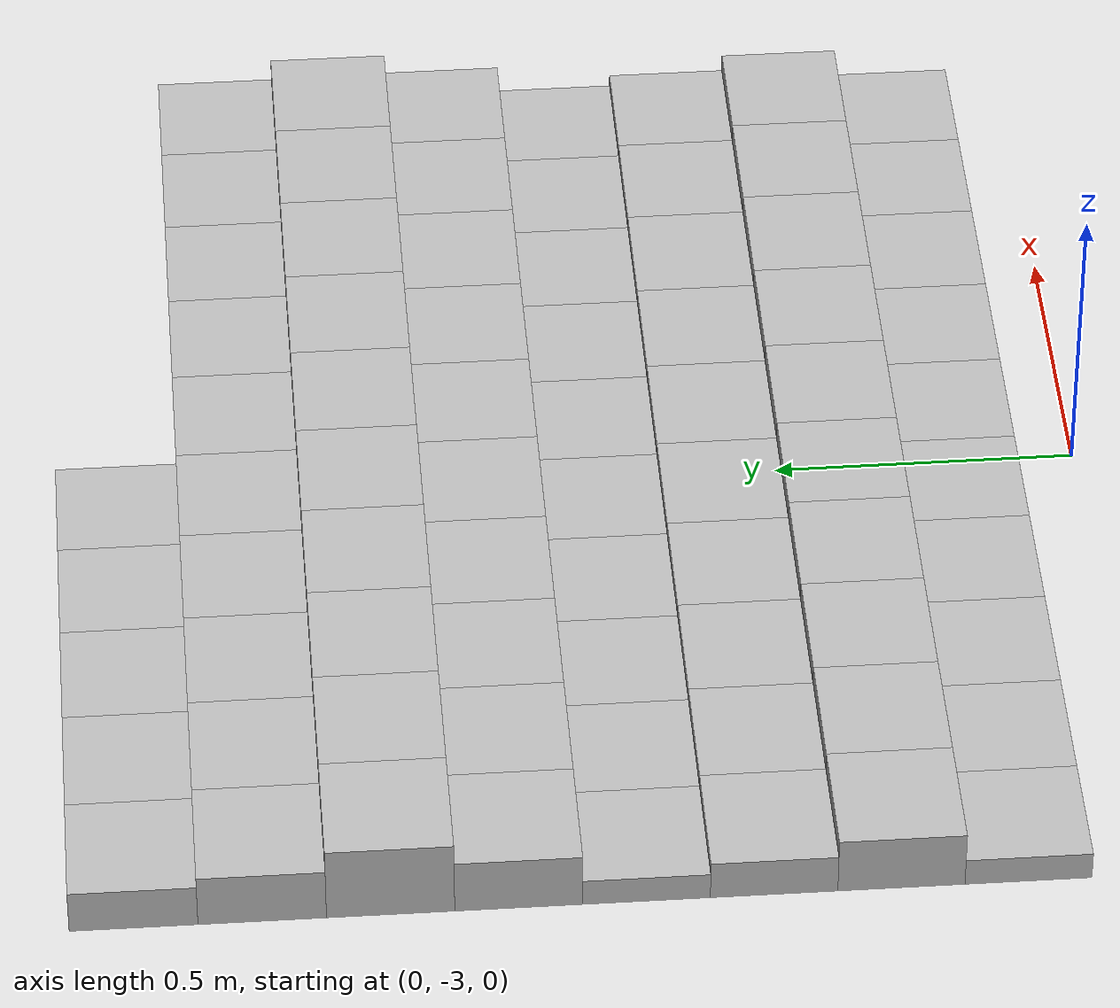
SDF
<sdf version="1.6">
 <model name="Terrain">
  <static>true</static>
  <link name="box_7_0">
   <pose>-0.9 -1.4 0.0399035328796 0 0 0</pose>
   <inertial>
    <mass>1.0</mass>
    <inertia><ixx>0.0</ixx><ixy>0.0</ixy><ixz>0.0</ixz><iyy>0.0</iyy><iyz>0.0</iyz><izz>0.0</izz></inertia>
   </inertial>
   <collision name="collision"><geometry><box><size>0.2 0.2 0.0798070657593</size></box></geometry></collision>
   <visual name="visual"><geometry><box><size>0.2 0.2 0.0798070657593</size></box></geometry></visual>
  </link>
  <link name="box_7_1">
   <pose>-0.7 -1.4 0.0399035328796 0 0 0</pose>
   <inertial>
    <mass>1.0</mass>
    <inertia><ixx>0.0</ixx><ixy>0.0</ixy><ixz>0.0</ixz><iyy>0.0</iyy><iyz>0.0</iyz><izz>0.0</izz></inertia>
   </inertial>
   <collision name="collision"><geometry><box><size>0.2 0.2 0.0798070657593</size></box></geometry></collision>
   <visual name="visual"><geometry><box><size>0.2 0.2 0.0798070657593</size></box></geometry></visual>
  </link>
  <link name="box_7_2">
   <pose>-0.5 -1.4 0.0399035328796 0 0 0</pose>
   <inertial>
    <mass>1.0</mass>
    <inertia><ixx>0.0</ixx><ixy>0.0</ixy><ixz>0.0</ixz><iyy>0.0</iyy><iyz>0.0</iyz><izz>0.0</izz></inertia>
   </inertial>
   <collision name="collision"><geometry><box><size>0.2 0.2 0.0798070657593</size></box></geometry></collision>
   <visual name="visual"><geometry><box><size>0.2 0.2 0.0798070657593</size></box></geometry></visual>
  </link>
  <link name="box_7_3">
   <pose>-0.3 -1.4 0.0399035328796 0 0 0</pose>
   <inertial>
    <mass>1.0</mass>
    <inertia><ixx>0.0</ixx><ixy>0.0</ixy><ixz>0.0</ixz><iyy>0.0</iyy><iyz>0.0</iyz><izz>0.0</izz></inertia>
   </inertial>
   <collision name="collision"><geometry><box><size>0.2 0.2 0.0798070657593</size></box></geometry></collision>
   <visual name="visual"><geometry><box><size>0.2 0.2 0.0798070657593</size></box></geometry></visual>
  </link>
  <link name="box_7_4">
   <pose>-0.1 -1.4 0.0399035328796 0 0 0</pose>
   <inertial>
    <mass>1.0</mass>
    <inertia><ixx>0.0</ixx><ixy>0.0</ixy><ixz>0.0</ixz><iyy>0.0</iyy><iyz>0.0</iyz><izz>0.0</izz></inertia>
   </inertial>
   <collision name="collision"><geometry><box><size>0.2 0.2 0.0798070657593</size></box></geometry></collision>
   <visual name="visual"><geometry><box><size>0.2 0.2 0.0798070657593</size></box></geometry></visual>
  </link>
  <link name="box_8_0">
   <pose>-0.9 -1.6 0.0491825249713 0 0 0</pose>
   <inertial>
    <mass>1.0</mass>
    <inertia><ixx>0.0</ixx><ixy>0.0</ixy><ixz>0.0</ixz><iyy>0.0</iyy><iyz>0.0</iyz><izz>0.0</izz></inertia>
   </inertial>
   <collision name="collision"><geometry><box><size>0.2 0.2 0.0983650499427</size></box></geometry></collision>
   <visual name="visual"><geometry><box><size>0.2 0.2 0.0983650499427</size></box></geometry></visual>
  </link>
  <link name="box_8_1">
   <pose>-0.7 -1.6 0.0491825249713 0 0 0</pose>
   <inertial>
    <mass>1.0</mass>
    <inertia><ixx>0.0</ixx><ixy>0.0</ixy><ixz>0.0</ixz><iyy>0.0</iyy><iyz>0.0</iyz><izz>0.0</izz></inertia>
   </inertial>
   <collision name="collision"><geometry><box><size>0.2 0.2 0.0983650499427</size></box></geometry></collision>
   <visual name="visual"><geometry><box><size>0.2 0.2 0.0983650499427</size></box></geometry></visual>
  </link>
  <link name="box_8_2">
   <pose>-0.5 -1.6 0.0491825249713 0 0 0</pose>
   <inertial>
    <mass>1.0</mass>
    <inertia><ixx>0.0</ixx><ixy>0.0</ixy><ixz>0.0</ixz><iyy>0.0</iyy><iyz>0.0</iyz><izz>0.0</izz></inertia>
   </inertial>
   <collision name="collision"><geometry><box><size>0.2 0.2 0.0983650499427</size></box></geometry></collision>
   <visual name="visual"><geometry><box><size>0.2 0.2 0.0983650499427</size></box></geometry></visual>
  </link>
  <link name="box_8_3">
   <pose>-0.3 -1.6 0.0491825249713 0 0 0</pose>
   <inertial>
    <mass>1.0</mass>
    <inertia><ixx>0.0</ixx><ixy>0.0</ixy><ixz>0.0</ixz><iyy>0.0</iyy><iyz>0.0</iyz><izz>0.0</izz></inertia>
   </inertial>
   <collision name="collision"><geometry><box><size>0.2 0.2 0.0983650499427</size></box></geometry></collision>
   <visual name="visual"><geometry><box><size>0.2 0.2 0.0983650499427</size></box></geometry></visual>
  </link>
  <link name="box_8_4">
   <pose>-0.1 -1.6 0.0491825249713 0 0 0</pose>
   <inertial>
    <mass>1.0</mass>
    <inertia><ixx>0.0</ixx><ixy>0.0</ixy><ixz>0.0</ixz><iyy>0.0</iyy><iyz>0.0</iyz><izz>0.0</izz></inertia>
   </inertial>
   <collision name="collision"><geometry><box><size>0.2 0.2 0.0983650499427</size></box></geometry></collision>
   <visual name="visual"><geometry><box><size>0.2 0.2 0.0983650499427</size></box></geometry></visual>
  </link>
  <link name="box_8_5">
   <pose>0.1 -1.6 0.0491825249713 0 0 0</pose>
   <inertial>
    <mass>1.0</mass>
    <inertia><ixx>0.0</ixx><ixy>0.0</ixy><ixz>0.0</ixz><iyy>0.0</iyy><iyz>0.0</iyz><izz>0.0</izz></inertia>
   </inertial>
   <collision name="collision"><geometry><box><size>0.2 0.2 0.0983650499427</size></box></geometry></collision>
   <visual name="visual"><geometry><box><size>0.2 0.2 0.0983650499427</size></box></geometry></visual>
  </link>
  <link name="box_8_6">
   <pose>0.3 -1.6 0.0491825249713 0 0 0</pose>
   <inertial>
    <mass>1.0</mass>
    <inertia><ixx>0.0</ixx><ixy>0.0</ixy><ixz>0.0</ixz><iyy>0.0</iyy><iyz>0.0</iyz><izz>0.0</izz></inertia>
   </inertial>
   <collision name="collision"><geometry><box><size>0.2 0.2 0.0983650499427</size></box></geometry></collision>
   <visual name="visual"><geometry><box><size>0.2 0.2 0.0983650499427</size></box></geometry></visual>
  </link>
  <link name="box_8_7">
   <pose>0.5 -1.6 0.0491825249713 0 0 0</pose>
   <inertial>
    <mass>1.0</mass>
    <inertia><ixx>0.0</ixx><ixy>0.0</ixy><ixz>0.0</ixz><iyy>0.0</iyy><iyz>0.0</iyz><izz>0.0</izz></inertia>
   </inertial>
   <collision name="collision"><geometry><box><size>0.2 0.2 0.0983650499427</size></box></geometry></collision>
   <visual name="visual"><geometry><box><size>0.2 0.2 0.0983650499427</size></box></geometry></visual>
  </link>
  <link name="box_8_8">
   <pose>0.7 -1.6 0.0491825249713 0 0 0</pose>
   <inertial>
    <mass>1.0</mass>
    <inertia><ixx>0.0</ixx><ixy>0.0</ixy><ixz>0.0</ixz><iyy>0.0</iyy><iyz>0.0</iyz><izz>0.0</izz></inertia>
   </inertial>
   <collision name="collision"><geometry><box><size>0.2 0.2 0.0983650499427</size></box></geometry></collision>
   <visual name="visual"><geometry><box><size>0.2 0.2 0.0983650499427</size></box></geometry></visual>
  </link>
  <link name="box_8_9">
   <pose>0.9 -1.6 0.0491825249713 0 0 0</pose>
   <inertial>
    <mass>1.0</mass>
    <inertia><ixx>0.0</ixx><ixy>0.0</ixy><ixz>0.0</ixz><iyy>0.0</iyy><iyz>0.0</iyz><izz>0.0</izz></inertia>
   </inertial>
   <collision name="collision"><geometry><box><size>0.2 0.2 0.0983650499427</size></box></geometry></collision>
   <visual name="visual"><geometry><box><size>0.2 0.2 0.0983650499427</size></box></geometry></visual>
  </link>
  <link name="box_9_0">
   <pose>-0.9 -1.8 0.0700837265305 0 0 0</pose>
   <inertial>
    <mass>1.0</mass>
    <inertia><ixx>0.0</ixx><ixy>0.0</ixy><ixz>0.0</ixz><iyy>0.0</iyy><iyz>0.0</iyz><izz>0.0</izz></inertia>
   </inertial>
   <collision name="collision"><geometry><box><size>0.2 0.2 0.140167453061</size></box></geometry></collision>
   <visual name="visual"><geometry><box><size>0.2 0.2 0.140167453061</size></box></geometry></visual>
  </link>
  <link name="box_9_1">
   <pose>-0.7 -1.8 0.0700837265305 0 0 0</pose>
   <inertial>
    <mass>1.0</mass>
    <inertia><ixx>0.0</ixx><ixy>0.0</ixy><ixz>0.0</ixz><iyy>0.0</iyy><iyz>0.0</iyz><izz>0.0</izz></inertia>
   </inertial>
   <collision name="collision"><geometry><box><size>0.2 0.2 0.140167453061</size></box></geometry></collision>
   <visual name="visual"><geometry><box><size>0.2 0.2 0.140167453061</size></box></geometry></visual>
  </link>
  <link name="box_9_2">
   <pose>-0.5 -1.8 0.0700837265305 0 0 0</pose>
   <inertial>
    <mass>1.0</mass>
    <inertia><ixx>0.0</ixx><ixy>0.0</ixy><ixz>0.0</ixz><iyy>0.0</iyy><iyz>0.0</iyz><izz>0.0</izz></inertia>
   </inertial>
   <collision name="collision"><geometry><box><size>0.2 0.2 0.140167453061</size></box></geometry></collision>
   <visual name="visual"><geometry><box><size>0.2 0.2 0.140167453061</size></box></geometry></visual>
  </link>
  <link name="box_9_3">
   <pose>-0.3 -1.8 0.0700837265305 0 0 0</pose>
   <inertial>
    <mass>1.0</mass>
    <inertia><ixx>0.0</ixx><ixy>0.0</ixy><ixz>0.0</ixz><iyy>0.0</iyy><iyz>0.0</iyz><izz>0.0</izz></inertia>
   </inertial>
   <collision name="collision"><geometry><box><size>0.2 0.2 0.140167453061</size></box></geometry></collision>
   <visual name="visual"><geometry><box><size>0.2 0.2 0.140167453061</size></box></geometry></visual>
  </link>
  <link name="box_9_4">
   <pose>-0.1 -1.8 0.0700837265305 0 0 0</pose>
   <inertial>
    <mass>1.0</mass>
    <inertia><ixx>0.0</ixx><ixy>0.0</ixy><ixz>0.0</ixz><iyy>0.0</iyy><iyz>0.0</iyz><izz>0.0</izz></inertia>
   </inertial>
   <collision name="collision"><geometry><box><size>0.2 0.2 0.140167453061</size></box></geometry></collision>
   <visual name="visual"><geometry><box><size>0.2 0.2 0.140167453061</size></box></geometry></visual>
  </link>
  <link name="box_9_5">
   <pose>0.1 -1.8 0.0700837265305 0 0 0</pose>
   <inertial>
    <mass>1.0</mass>
    <inertia><ixx>0.0</ixx><ixy>0.0</ixy><ixz>0.0</ixz><iyy>0.0</iyy><iyz>0.0</iyz><izz>0.0</izz></inertia>
   </inertial>
   <collision name="collision"><geometry><box><size>0.2 0.2 0.140167453061</size></box></geometry></collision>
   <visual name="visual"><geometry><box><size>0.2 0.2 0.140167453061</size></box></geometry></visual>
  </link>
  <link name="box_9_6">
   <pose>0.3 -1.8 0.0700837265305 0 0 0</pose>
   <inertial>
    <mass>1.0</mass>
    <inertia><ixx>0.0</ixx><ixy>0.0</ixy><ixz>0.0</ixz><iyy>0.0</iyy><iyz>0.0</iyz><izz>0.0</izz></inertia>
   </inertial>
   <collision name="collision"><geometry><box><size>0.2 0.2 0.140167453061</size></box></geometry></collision>
   <visual name="visual"><geometry><box><size>0.2 0.2 0.140167453061</size></box></geometry></visual>
  </link>
  <link name="box_9_7">
   <pose>0.5 -1.8 0.0700837265305 0 0 0</pose>
   <inertial>
    <mass>1.0</mass>
    <inertia><ixx>0.0</ixx><ixy>0.0</ixy><ixz>0.0</ixz><iyy>0.0</iyy><iyz>0.0</iyz><izz>0.0</izz></inertia>
   </inertial>
   <collision name="collision"><geometry><box><size>0.2 0.2 0.140167453061</size></box></geometry></collision>
   <visual name="visual"><geometry><box><size>0.2 0.2 0.140167453061</size></box></geometry></visual>
  </link>
  <link name="box_9_8">
   <pose>0.7 -1.8 0.0700837265305 0 0 0</pose>
   <inertial>
    <mass>1.0</mass>
    <inertia><ixx>0.0</ixx><ixy>0.0</ixy><ixz>0.0</ixz><iyy>0.0</iyy><iyz>0.0</iyz><izz>0.0</izz></inertia>
   </inertial>
   <collision name="collision"><geometry><box><size>0.2 0.2 0.140167453061</size></box></geometry></collision>
   <visual name="visual"><geometry><box><size>0.2 0.2 0.140167453061</size></box></geometry></visual>
  </link>
  <link name="box_9_9">
   <pose>0.9 -1.8 0.0700837265305 0 0 0</pose>
   <inertial>
    <mass>1.0</mass>
    <inertia><ixx>0.0</ixx><ixy>0.0</ixy><ixz>0.0</ixz><iyy>0.0</iyy><iyz>0.0</iyz><izz>0.0</izz></inertia>
   </inertial>
   <collision name="collision"><geometry><box><size>0.2 0.2 0.140167453061</size></box></geometry></collision>
   <visual name="visual"><geometry><box><size>0.2 0.2 0.140167453061</size></box></geometry></visual>
  </link>
  <link name="box_10_0">
   <pose>-0.9 -2.0 0.0508107883354 0 0 0</pose>
   <inertial>
    <mass>1.0</mass>
    <inertia><ixx>0.0</ixx><ixy>0.0</ixy><ixz>0.0</ixz><iyy>0.0</iyy><iyz>0.0</iyz><izz>0.0</izz></inertia>
   </inertial>
   <collision name="collision"><geometry><box><size>0.2 0.2 0.101621576671</size></box></geometry></collision>
   <visual name="visual"><geometry><box><size>0.2 0.2 0.101621576671</size></box></geometry></visual>
  </link>
  <link name="box_10_1">
   <pose>-0.7 -2.0 0.0508107883354 0 0 0</pose>
   <inertial>
    <mass>1.0</mass>
    <inertia><ixx>0.0</ixx><ixy>0.0</ixy><ixz>0.0</ixz><iyy>0.0</iyy><iyz>0.0</iyz><izz>0.0</izz></inertia>
   </inertial>
   <collision name="collision"><geometry><box><size>0.2 0.2 0.101621576671</size></box></geometry></collision>
   <visual name="visual"><geometry><box><size>0.2 0.2 0.101621576671</size></box></geometry></visual>
  </link>
  <link name="box_10_2">
   <pose>-0.5 -2.0 0.0508107883354 0 0 0</pose>
   <inertial>
    <mass>1.0</mass>
    <inertia><ixx>0.0</ixx><ixy>0.0</ixy><ixz>0.0</ixz><iyy>0.0</iyy><iyz>0.0</iyz><izz>0.0</izz></inertia>
   </inertial>
   <collision name="collision"><geometry><box><size>0.2 0.2 0.101621576671</size></box></geometry></collision>
   <visual name="visual"><geometry><box><size>0.2 0.2 0.101621576671</size></box></geometry></visual>
  </link>
  <link name="box_10_3">
   <pose>-0.3 -2.0 0.0508107883354 0 0 0</pose>
   <inertial>
    <mass>1.0</mass>
    <inertia><ixx>0.0</ixx><ixy>0.0</ixy><ixz>0.0</ixz><iyy>0.0</iyy><iyz>0.0</iyz><izz>0.0</izz></inertia>
   </inertial>
   <collision name="collision"><geometry><box><size>0.2 0.2 0.101621576671</size></box></geometry></collision>
   <visual name="visual"><geometry><box><size>0.2 0.2 0.101621576671</size></box></geometry></visual>
  </link>
  <link name="box_10_4">
   <pose>-0.1 -2.0 0.0508107883354 0 0 0</pose>
   <inertial>
    <mass>1.0</mass>
    <inertia><ixx>0.0</ixx><ixy>0.0</ixy><ixz>0.0</ixz><iyy>0.0</iyy><iyz>0.0</iyz><izz>0.0</izz></inertia>
   </inertial>
   <collision name="collision"><geometry><box><size>0.2 0.2 0.101621576671</size></box></geometry></collision>
   <visual name="visual"><geometry><box><size>0.2 0.2 0.101621576671</size></box></geometry></visual>
  </link>
  <link name="box_10_5">
   <pose>0.1 -2.0 0.0508107883354 0 0 0</pose>
   <inertial>
    <mass>1.0</mass>
    <inertia><ixx>0.0</ixx><ixy>0.0</ixy><ixz>0.0</ixz><iyy>0.0</iyy><iyz>0.0</iyz><izz>0.0</izz></inertia>
   </inertial>
   <collision name="collision"><geometry><box><size>0.2 0.2 0.101621576671</size></box></geometry></collision>
   <visual name="visual"><geometry><box><size>0.2 0.2 0.101621576671</size></box></geometry></visual>
  </link>
  <link name="box_10_6">
   <pose>0.3 -2.0 0.0508107883354 0 0 0</pose>
   <inertial>
    <mass>1.0</mass>
    <inertia><ixx>0.0</ixx><ixy>0.0</ixy><ixz>0.0</ixz><iyy>0.0</iyy><iyz>0.0</iyz><izz>0.0</izz></inertia>
   </inertial>
   <collision name="collision"><geometry><box><size>0.2 0.2 0.101621576671</size></box></geometry></collision>
   <visual name="visual"><geometry><box><size>0.2 0.2 0.101621576671</size></box></geometry></visual>
  </link>
  <link name="box_10_7">
   <pose>0.5 -2.0 0.0508107883354 0 0 0</pose>
   <inertial>
    <mass>1.0</mass>
    <inertia><ixx>0.0</ixx><ixy>0.0</ixy><ixz>0.0</ixz><iyy>0.0</iyy><iyz>0.0</iyz><izz>0.0</izz></inertia>
   </inertial>
   <collision name="collision"><geometry><box><size>0.2 0.2 0.101621576671</size></box></geometry></collision>
   <visual name="visual"><geometry><box><size>0.2 0.2 0.101621576671</size></box></geometry></visual>
  </link>
  <link name="box_10_8">
   <pose>0.7 -2.0 0.0508107883354 0 0 0</pose>
   <inertial>
    <mass>1.0</mass>
    <inertia><ixx>0.0</ixx><ixy>0.0</ixy><ixz>0.0</ixz><iyy>0.0</iyy><iyz>0.0</iyz><izz>0.0</izz></inertia>
   </inertial>
   <collision name="collision"><geometry><box><size>0.2 0.2 0.101621576671</size></box></geometry></collision>
   <visual name="visual"><geometry><box><size>0.2 0.2 0.101621576671</size></box></geometry></visual>
  </link>
  <link name="box_10_9">
   <pose>0.9 -2.0 0.0508107883354 0 0 0</pose>
   <inertial>
    <mass>1.0</mass>
    <inertia><ixx>0.0</ixx><ixy>0.0</ixy><ixz>0.0</ixz><iyy>0.0</iyy><iyz>0.0</iyz><izz>0.0</izz></inertia>
   </inertial>
   <collision name="collision"><geometry><box><size>0.2 0.2 0.101621576671</size></box></geometry></collision>
   <visual name="visual"><geometry><box><size>0.2 0.2 0.101621576671</size></box></geometry></visual>
  </link>
  <link name="box_11_0">
   <pose>-0.9 -2.2 0.0249241322154 0 0 0</pose>
   <inertial>
    <mass>1.0</mass>
    <inertia><ixx>0.0</ixx><ixy>0.0</ixy><ixz>0.0</ixz><iyy>0.0</iyy><iyz>0.0</iyz><izz>0.0</izz></inertia>
   </inertial>
   <collision name="collision"><geometry><box><size>0.2 0.2 0.0498482644308</size></box></geometry></collision>
   <visual name="visual"><geometry><box><size>0.2 0.2 0.0498482644308</size></box></geometry></visual>
  </link>
  <link name="box_11_1">
   <pose>-0.7 -2.2 0.0249241322154 0 0 0</pose>
   <inertial>
    <mass>1.0</mass>
    <inertia><ixx>0.0</ixx><ixy>0.0</ixy><ixz>0.0</ixz><iyy>0.0</iyy><iyz>0.0</iyz><izz>0.0</izz></inertia>
   </inertial>
   <collision name="collision"><geometry><box><size>0.2 0.2 0.0498482644308</size></box></geometry></collision>
   <visual name="visual"><geometry><box><size>0.2 0.2 0.0498482644308</size></box></geometry></visual>
  </link>
  <link name="box_11_2">
   <pose>-0.5 -2.2 0.0249241322154 0 0 0</pose>
   <inertial>
    <mass>1.0</mass>
    <inertia><ixx>0.0</ixx><ixy>0.0</ixy><ixz>0.0</ixz><iyy>0.0</iyy><iyz>0.0</iyz><izz>0.0</izz></inertia>
   </inertial>
   <collision name="collision"><geometry><box><size>0.2 0.2 0.0498482644308</size></box></geometry></collision>
   <visual name="visual"><geometry><box><size>0.2 0.2 0.0498482644308</size></box></geometry></visual>
  </link>
  <link name="box_11_3">
   <pose>-0.3 -2.2 0.0249241322154 0 0 0</pose>
   <inertial>
    <mass>1.0</mass>
    <inertia><ixx>0.0</ixx><ixy>0.0</ixy><ixz>0.0</ixz><iyy>0.0</iyy><iyz>0.0</iyz><izz>0.0</izz></inertia>
   </inertial>
   <collision name="collision"><geometry><box><size>0.2 0.2 0.0498482644308</size></box></geometry></collision>
   <visual name="visual"><geometry><box><size>0.2 0.2 0.0498482644308</size></box></geometry></visual>
  </link>
  <link name="box_11_4">
   <pose>-0.1 -2.2 0.0249241322154 0 0 0</pose>
   <inertial>
    <mass>1.0</mass>
    <inertia><ixx>0.0</ixx><ixy>0.0</ixy><ixz>0.0</ixz><iyy>0.0</iyy><iyz>0.0</iyz><izz>0.0</izz></inertia>
   </inertial>
   <collision name="collision"><geometry><box><size>0.2 0.2 0.0498482644308</size></box></geometry></collision>
   <visual name="visual"><geometry><box><size>0.2 0.2 0.0498482644308</size></box></geometry></visual>
  </link>
  <link name="box_11_5">
   <pose>0.1 -2.2 0.0249241322154 0 0 0</pose>
   <inertial>
    <mass>1.0</mass>
    <inertia><ixx>0.0</ixx><ixy>0.0</ixy><ixz>0.0</ixz><iyy>0.0</iyy><iyz>0.0</iyz><izz>0.0</izz></inertia>
   </inertial>
   <collision name="collision"><geometry><box><size>0.2 0.2 0.0498482644308</size></box></geometry></collision>
   <visual name="visual"><geometry><box><size>0.2 0.2 0.0498482644308</size></box></geometry></visual>
  </link>
  <link name="box_11_6">
   <pose>0.3 -2.2 0.0249241322154 0 0 0</pose>
   <inertial>
    <mass>1.0</mass>
    <inertia><ixx>0.0</ixx><ixy>0.0</ixy><ixz>0.0</ixz><iyy>0.0</iyy><iyz>0.0</iyz><izz>0.0</izz></inertia>
   </inertial>
   <collision name="collision"><geometry><box><size>0.2 0.2 0.0498482644308</size></box></geometry></collision>
   <visual name="visual"><geometry><box><size>0.2 0.2 0.0498482644308</size></box></geometry></visual>
  </link>
  <link name="box_11_7">
   <pose>0.5 -2.2 0.0249241322154 0 0 0</pose>
   <inertial>
    <mass>1.0</mass>
    <inertia><ixx>0.0</ixx><ixy>0.0</ixy><ixz>0.0</ixz><iyy>0.0</iyy><iyz>0.0</iyz><izz>0.0</izz></inertia>
   </inertial>
   <collision name="collision"><geometry><box><size>0.2 0.2 0.0498482644308</size></box></geometry></collision>
   <visual name="visual"><geometry><box><size>0.2 0.2 0.0498482644308</size></box></geometry></visual>
  </link>
  <link name="box_11_8">
   <pose>0.7 -2.2 0.0249241322154 0 0 0</pose>
   <inertial>
    <mass>1.0</mass>
    <inertia><ixx>0.0</ixx><ixy>0.0</ixy><ixz>0.0</ixz><iyy>0.0</iyy><iyz>0.0</iyz><izz>0.0</izz></inertia>
   </inertial>
   <collision name="collision"><geometry><box><size>0.2 0.2 0.0498482644308</size></box></geometry></collision>
   <visual name="visual"><geometry><box><size>0.2 0.2 0.0498482644308</size></box></geometry></visual>
  </link>
  <link name="box_11_9">
   <pose>0.9 -2.2 0.0249241322154 0 0 0</pose>
   <inertial>
    <mass>1.0</mass>
    <inertia><ixx>0.0</ixx><ixy>0.0</ixy><ixz>0.0</ixz><iyy>0.0</iyy><iyz>0.0</iyz><izz>0.0</izz></inertia>
   </inertial>
   <collision name="collision"><geometry><box><size>0.2 0.2 0.0498482644308</size></box></geometry></collision>
   <visual name="visual"><geometry><box><size>0.2 0.2 0.0498482644308</size></box></geometry></visual>
  </link>
  <link name="box_12_0">
   <pose>-0.9 -2.4 0.0363460001961 0 0 0</pose>
   <inertial>
    <mass>1.0</mass>
    <inertia><ixx>0.0</ixx><ixy>0.0</ixy><ixz>0.0</ixz><iyy>0.0</iyy><iyz>0.0</iyz><izz>0.0</izz></inertia>
   </inertial>
   <collision name="collision"><geometry><box><size>0.2 0.2 0.0726920003922</size></box></geometry></collision>
   <visual name="visual"><geometry><box><size>0.2 0.2 0.0726920003922</size></box></geometry></visual>
  </link>
  <link name="box_12_1">
   <pose>-0.7 -2.4 0.0363460001961 0 0 0</pose>
   <inertial>
    <mass>1.0</mass>
    <inertia><ixx>0.0</ixx><ixy>0.0</ixy><ixz>0.0</ixz><iyy>0.0</iyy><iyz>0.0</iyz><izz>0.0</izz></inertia>
   </inertial>
   <collision name="collision"><geometry><box><size>0.2 0.2 0.0726920003922</size></box></geometry></collision>
   <visual name="visual"><geometry><box><size>0.2 0.2 0.0726920003922</size></box></geometry></visual>
  </link>
  <link name="box_12_2">
   <pose>-0.5 -2.4 0.0363460001961 0 0 0</pose>
   <inertial>
    <mass>1.0</mass>
    <inertia><ixx>0.0</ixx><ixy>0.0</ixy><ixz>0.0</ixz><iyy>0.0</iyy><iyz>0.0</iyz><izz>0.0</izz></inertia>
   </inertial>
   <collision name="collision"><geometry><box><size>0.2 0.2 0.0726920003922</size></box></geometry></collision>
   <visual name="visual"><geometry><box><size>0.2 0.2 0.0726920003922</size></box></geometry></visual>
  </link>
  <link name="box_12_3">
   <pose>-0.3 -2.4 0.0363460001961 0 0 0</pose>
   <inertial>
    <mass>1.0</mass>
    <inertia><ixx>0.0</ixx><ixy>0.0</ixy><ixz>0.0</ixz><iyy>0.0</iyy><iyz>0.0</iyz><izz>0.0</izz></inertia>
   </inertial>
   <collision name="collision"><geometry><box><size>0.2 0.2 0.0726920003922</size></box></geometry></collision>
   <visual name="visual"><geometry><box><size>0.2 0.2 0.0726920003922</size></box></geometry></visual>
  </link>
  <link name="box_12_4">
   <pose>-0.1 -2.4 0.0363460001961 0 0 0</pose>
   <inertial>
    <mass>1.0</mass>
    <inertia><ixx>0.0</ixx><ixy>0.0</ixy><ixz>0.0</ixz><iyy>0.0</iyy><iyz>0.0</iyz><izz>0.0</izz></inertia>
   </inertial>
   <collision name="collision"><geometry><box><size>0.2 0.2 0.0726920003922</size></box></geometry></collision>
   <visual name="visual"><geometry><box><size>0.2 0.2 0.0726920003922</size></box></geometry></visual>
  </link>
  <link name="box_12_5">
   <pose>0.1 -2.4 0.0363460001961 0 0 0</pose>
   <inertial>
    <mass>1.0</mass>
    <inertia><ixx>0.0</ixx><ixy>0.0</ixy><ixz>0.0</ixz><iyy>0.0</iyy><iyz>0.0</iyz><izz>0.0</izz></inertia>
   </inertial>
   <collision name="collision"><geometry><box><size>0.2 0.2 0.0726920003922</size></box></geometry></collision>
   <visual name="visual"><geometry><box><size>0.2 0.2 0.0726920003922</size></box></geometry></visual>
  </link>
  <link name="box_12_6">
   <pose>0.3 -2.4 0.0363460001961 0 0 0</pose>
   <inertial>
    <mass>1.0</mass>
    <inertia><ixx>0.0</ixx><ixy>0.0</ixy><ixz>0.0</ixz><iyy>0.0</iyy><iyz>0.0</iyz><izz>0.0</izz></inertia>
   </inertial>
   <collision name="collision"><geometry><box><size>0.2 0.2 0.0726920003922</size></box></geometry></collision>
   <visual name="visual"><geometry><box><size>0.2 0.2 0.0726920003922</size></box></geometry></visual>
  </link>
  <link name="box_12_7">
   <pose>0.5 -2.4 0.0363460001961 0 0 0</pose>
   <inertial>
    <mass>1.0</mass>
    <inertia><ixx>0.0</ixx><ixy>0.0</ixy><ixz>0.0</ixz><iyy>0.0</iyy><iyz>0.0</iyz><izz>0.0</izz></inertia>
   </inertial>
   <collision name="collision"><geometry><box><size>0.2 0.2 0.0726920003922</size></box></geometry></collision>
   <visual name="visual"><geometry><box><size>0.2 0.2 0.0726920003922</size></box></geometry></visual>
  </link>
  <link name="box_12_8">
   <pose>0.7 -2.4 0.0363460001961 0 0 0</pose>
   <inertial>
    <mass>1.0</mass>
    <inertia><ixx>0.0</ixx><ixy>0.0</ixy><ixz>0.0</ixz><iyy>0.0</iyy><iyz>0.0</iyz><izz>0.0</izz></inertia>
   </inertial>
   <collision name="collision"><geometry><box><size>0.2 0.2 0.0726920003922</size></box></geometry></collision>
   <visual name="visual"><geometry><box><size>0.2 0.2 0.0726920003922</size></box></geometry></visual>
  </link>
  <link name="box_12_9">
   <pose>0.9 -2.4 0.0363460001961 0 0 0</pose>
   <inertial>
    <mass>1.0</mass>
    <inertia><ixx>0.0</ixx><ixy>0.0</ixy><ixz>0.0</ixz><iyy>0.0</iyy><iyz>0.0</iyz><izz>0.0</izz></inertia>
   </inertial>
   <collision name="collision"><geometry><box><size>0.2 0.2 0.0726920003922</size></box></geometry></collision>
   <visual name="visual"><geometry><box><size>0.2 0.2 0.0726920003922</size></box></geometry></visual>
  </link>
  <link name="box_13_0">
   <pose>-0.9 -2.6 0.0527584150805 0 0 0</pose>
   <inertial>
    <mass>1.0</mass>
    <inertia><ixx>0.0</ixx><ixy>0.0</ixy><ixz>0.0</ixz><iyy>0.0</iyy><iyz>0.0</iyz><izz>0.0</izz></inertia>
   </inertial>
   <collision name="collision"><geometry><box><size>0.2 0.2 0.105516830161</size></box></geometry></collision>
   <visual name="visual"><geometry><box><size>0.2 0.2 0.105516830161</size></box></geometry></visual>
  </link>
  <link name="box_13_1">
   <pose>-0.7 -2.6 0.0527584150805 0 0 0</pose>
   <inertial>
    <mass>1.0</mass>
    <inertia><ixx>0.0</ixx><ixy>0.0</ixy><ixz>0.0</ixz><iyy>0.0</iyy><iyz>0.0</iyz><izz>0.0</izz></inertia>
   </inertial>
   <collision name="collision"><geometry><box><size>0.2 0.2 0.105516830161</size></box></geometry></collision>
   <visual name="visual"><geometry><box><size>0.2 0.2 0.105516830161</size></box></geometry></visual>
  </link>
  <link name="box_13_2">
   <pose>-0.5 -2.6 0.0527584150805 0 0 0</pose>
   <inertial>
    <mass>1.0</mass>
    <inertia><ixx>0.0</ixx><ixy>0.0</ixy><ixz>0.0</ixz><iyy>0.0</iyy><iyz>0.0</iyz><izz>0.0</izz></inertia>
   </inertial>
   <collision name="collision"><geometry><box><size>0.2 0.2 0.105516830161</size></box></geometry></collision>
   <visual name="visual"><geometry><box><size>0.2 0.2 0.105516830161</size></box></geometry></visual>
  </link>
  <link name="box_13_3">
   <pose>-0.3 -2.6 0.0527584150805 0 0 0</pose>
   <inertial>
    <mass>1.0</mass>
    <inertia><ixx>0.0</ixx><ixy>0.0</ixy><ixz>0.0</ixz><iyy>0.0</iyy><iyz>0.0</iyz><izz>0.0</izz></inertia>
   </inertial>
   <collision name="collision"><geometry><box><size>0.2 0.2 0.105516830161</size></box></geometry></collision>
   <visual name="visual"><geometry><box><size>0.2 0.2 0.105516830161</size></box></geometry></visual>
  </link>
  <link name="box_13_4">
   <pose>-0.1 -2.6 0.0527584150805 0 0 0</pose>
   <inertial>
    <mass>1.0</mass>
    <inertia><ixx>0.0</ixx><ixy>0.0</ixy><ixz>0.0</ixz><iyy>0.0</iyy><iyz>0.0</iyz><izz>0.0</izz></inertia>
   </inertial>
   <collision name="collision"><geometry><box><size>0.2 0.2 0.105516830161</size></box></geometry></collision>
   <visual name="visual"><geometry><box><size>0.2 0.2 0.105516830161</size></box></geometry></visual>
  </link>
  <link name="box_13_5">
   <pose>0.1 -2.6 0.0527584150805 0 0 0</pose>
   <inertial>
    <mass>1.0</mass>
    <inertia><ixx>0.0</ixx><ixy>0.0</ixy><ixz>0.0</ixz><iyy>0.0</iyy><iyz>0.0</iyz><izz>0.0</izz></inertia>
   </inertial>
   <collision name="collision"><geometry><box><size>0.2 0.2 0.105516830161</size></box></geometry></collision>
   <visual name="visual"><geometry><box><size>0.2 0.2 0.105516830161</size></box></geometry></visual>
  </link>
  <link name="box_13_6">
   <pose>0.3 -2.6 0.0527584150805 0 0 0</pose>
   <inertial>
    <mass>1.0</mass>
    <inertia><ixx>0.0</ixx><ixy>0.0</ixy><ixz>0.0</ixz><iyy>0.0</iyy><iyz>0.0</iyz><izz>0.0</izz></inertia>
   </inertial>
   <collision name="collision"><geometry><box><size>0.2 0.2 0.105516830161</size></box></geometry></collision>
   <visual name="visual"><geometry><box><size>0.2 0.2 0.105516830161</size></box></geometry></visual>
  </link>
  <link name="box_13_7">
   <pose>0.5 -2.6 0.0527584150805 0 0 0</pose>
   <inertial>
    <mass>1.0</mass>
    <inertia><ixx>0.0</ixx><ixy>0.0</ixy><ixz>0.0</ixz><iyy>0.0</iyy><iyz>0.0</iyz><izz>0.0</izz></inertia>
   </inertial>
   <collision name="collision"><geometry><box><size>0.2 0.2 0.105516830161</size></box></geometry></collision>
   <visual name="visual"><geometry><box><size>0.2 0.2 0.105516830161</size></box></geometry></visual>
  </link>
  <link name="box_13_8">
   <pose>0.7 -2.6 0.0527584150805 0 0 0</pose>
   <inertial>
    <mass>1.0</mass>
    <inertia><ixx>0.0</ixx><ixy>0.0</ixy><ixz>0.0</ixz><iyy>0.0</iyy><iyz>0.0</iyz><izz>0.0</izz></inertia>
   </inertial>
   <collision name="collision"><geometry><box><size>0.2 0.2 0.105516830161</size></box></geometry></collision>
   <visual name="visual"><geometry><box><size>0.2 0.2 0.105516830161</size></box></geometry></visual>
  </link>
  <link name="box_13_9">
   <pose>0.9 -2.6 0.0527584150805 0 0 0</pose>
   <inertial>
    <mass>1.0</mass>
    <inertia><ixx>0.0</ixx><ixy>0.0</ixy><ixz>0.0</ixz><iyy>0.0</iyy><iyz>0.0</iyz><izz>0.0</izz></inertia>
   </inertial>
   <collision name="collision"><geometry><box><size>0.2 0.2 0.105516830161</size></box></geometry></collision>
   <visual name="visual"><geometry><box><size>0.2 0.2 0.105516830161</size></box></geometry></visual>
  </link>
  <link name="box_14_0">
   <pose>-0.9 -2.8 0.0256347048463 0 0 0</pose>
   <inertial>
    <mass>1.0</mass>
    <inertia><ixx>0.0</ixx><ixy>0.0</ixy><ixz>0.0</ixz><iyy>0.0</iyy><iyz>0.0</iyz><izz>0.0</izz></inertia>
   </inertial>
   <collision name="collision"><geometry><box><size>0.2 0.2 0.0512694096927</size></box></geometry></collision>
   <visual name="visual"><geometry><box><size>0.2 0.2 0.0512694096927</size></box></geometry></visual>
  </link>
  <link name="box_14_1">
   <pose>-0.7 -2.8 0.0256347048463 0 0 0</pose>
   <inertial>
    <mass>1.0</mass>
    <inertia><ixx>0.0</ixx><ixy>0.0</ixy><ixz>0.0</ixz><iyy>0.0</iyy><iyz>0.0</iyz><izz>0.0</izz></inertia>
   </inertial>
   <collision name="collision"><geometry><box><size>0.2 0.2 0.0512694096927</size></box></geometry></collision>
   <visual name="visual"><geometry><box><size>0.2 0.2 0.0512694096927</size></box></geometry></visual>
  </link>
  <link name="box_14_2">
   <pose>-0.5 -2.8 0.0256347048463 0 0 0</pose>
   <inertial>
    <mass>1.0</mass>
    <inertia><ixx>0.0</ixx><ixy>0.0</ixy><ixz>0.0</ixz><iyy>0.0</iyy><iyz>0.0</iyz><izz>0.0</izz></inertia>
   </inertial>
   <collision name="collision"><geometry><box><size>0.2 0.2 0.0512694096927</size></box></geometry></collision>
   <visual name="visual"><geometry><box><size>0.2 0.2 0.0512694096927</size></box></geometry></visual>
  </link>
  <link name="box_14_3">
   <pose>-0.3 -2.8 0.0256347048463 0 0 0</pose>
   <inertial>
    <mass>1.0</mass>
    <inertia><ixx>0.0</ixx><ixy>0.0</ixy><ixz>0.0</ixz><iyy>0.0</iyy><iyz>0.0</iyz><izz>0.0</izz></inertia>
   </inertial>
   <collision name="collision"><geometry><box><size>0.2 0.2 0.0512694096927</size></box></geometry></collision>
   <visual name="visual"><geometry><box><size>0.2 0.2 0.0512694096927</size></box></geometry></visual>
  </link>
  <link name="box_14_4">
   <pose>-0.1 -2.8 0.0256347048463 0 0 0</pose>
   <inertial>
    <mass>1.0</mass>
    <inertia><ixx>0.0</ixx><ixy>0.0</ixy><ixz>0.0</ixz><iyy>0.0</iyy><iyz>0.0</iyz><izz>0.0</izz></inertia>
   </inertial>
   <collision name="collision"><geometry><box><size>0.2 0.2 0.0512694096927</size></box></geometry></collision>
   <visual name="visual"><geometry><box><size>0.2 0.2 0.0512694096927</size></box></geometry></visual>
  </link>
  <link name="box_14_5">
   <pose>0.1 -2.8 0.0256347048463 0 0 0</pose>
   <inertial>
    <mass>1.0</mass>
    <inertia><ixx>0.0</ixx><ixy>0.0</ixy><ixz>0.0</ixz><iyy>0.0</iyy><iyz>0.0</iyz><izz>0.0</izz></inertia>
   </inertial>
   <collision name="collision"><geometry><box><size>0.2 0.2 0.0512694096927</size></box></geometry></collision>
   <visual name="visual"><geometry><box><size>0.2 0.2 0.0512694096927</size></box></geometry></visual>
  </link>
  <link name="box_14_6">
   <pose>0.3 -2.8 0.0256347048463 0 0 0</pose>
   <inertial>
    <mass>1.0</mass>
    <inertia><ixx>0.0</ixx><ixy>0.0</ixy><ixz>0.0</ixz><iyy>0.0</iyy><iyz>0.0</iyz><izz>0.0</izz></inertia>
   </inertial>
   <collision name="collision"><geometry><box><size>0.2 0.2 0.0512694096927</size></box></geometry></collision>
   <visual name="visual"><geometry><box><size>0.2 0.2 0.0512694096927</size></box></geometry></visual>
  </link>
  <link name="box_14_7">
   <pose>0.5 -2.8 0.0256347048463 0 0 0</pose>
   <inertial>
    <mass>1.0</mass>
    <inertia><ixx>0.0</ixx><ixy>0.0</ixy><ixz>0.0</ixz><iyy>0.0</iyy><iyz>0.0</iyz><izz>0.0</izz></inertia>
   </inertial>
   <collision name="collision"><geometry><box><size>0.2 0.2 0.0512694096927</size></box></geometry></collision>
   <visual name="visual"><geometry><box><size>0.2 0.2 0.0512694096927</size></box></geometry></visual>
  </link>
  <link name="box_14_8">
   <pose>0.7 -2.8 0.0256347048463 0 0 0</pose>
   <inertial>
    <mass>1.0</mass>
    <inertia><ixx>0.0</ixx><ixy>0.0</ixy><ixz>0.0</ixz><iyy>0.0</iyy><iyz>0.0</iyz><izz>0.0</izz></inertia>
   </inertial>
   <collision name="collision"><geometry><box><size>0.2 0.2 0.0512694096927</size></box></geometry></collision>
   <visual name="visual"><geometry><box><size>0.2 0.2 0.0512694096927</size></box></geometry></visual>
  </link>
  <link name="box_14_9">
   <pose>0.9 -2.8 0.0256347048463 0 0 0</pose>
   <inertial>
    <mass>1.0</mass>
    <inertia><ixx>0.0</ixx><ixy>0.0</ixy><ixz>0.0</ixz><iyy>0.0</iyy><iyz>0.0</iyz><izz>0.0</izz></inertia>
   </inertial>
   <collision name="collision"><geometry><box><size>0.2 0.2 0.0512694096927</size></box></geometry></collision>
   <visual name="visual"><geometry><box><size>0.2 0.2 0.0512694096927</size></box></geometry></visual>
  </link>
 </model>
</sdf>
